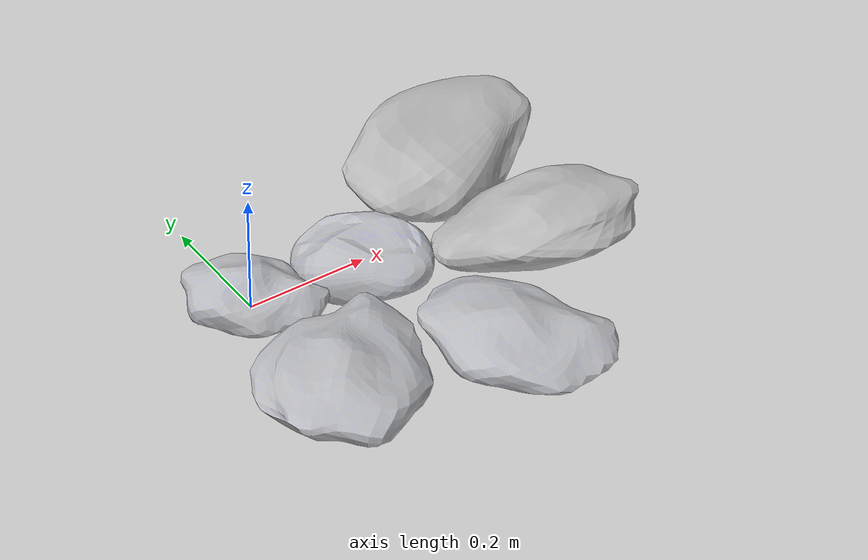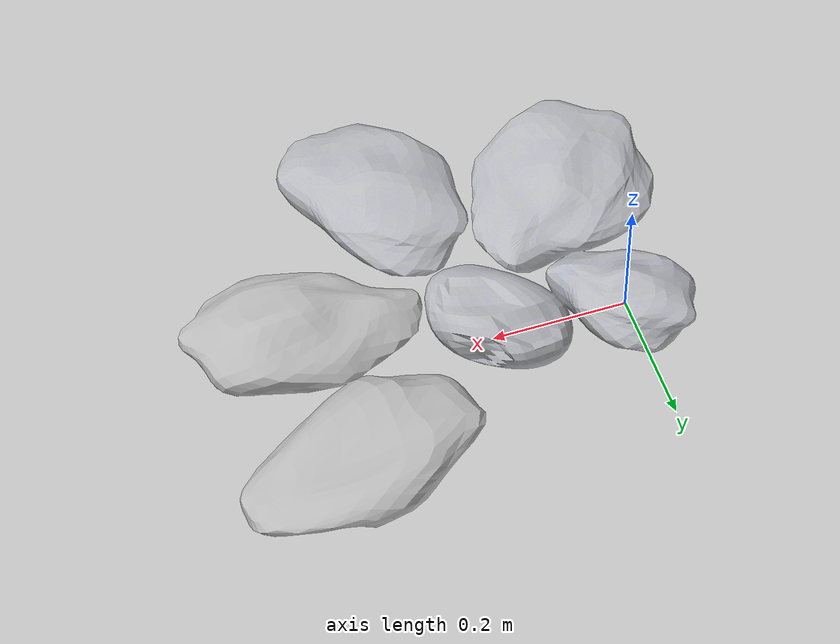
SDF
<?xml version="1.0" ?>
<sdf version="1.5">
  <model name="rocks">
    <static>true</static>
    <link name="link">
      <collision name="collision">
        <geometry>
          <mesh>
            <uri>model://rocks/meshes/rocks.dae</uri>
          </mesh>
        </geometry>
      </collision>
      <visual name="visual">
        <geometry>
          <mesh>
            <uri>model://rocks/meshes/rocks.dae</uri>
          </mesh>
        </geometry>
      </visual>
    </link>
  </model>
</sdf>
